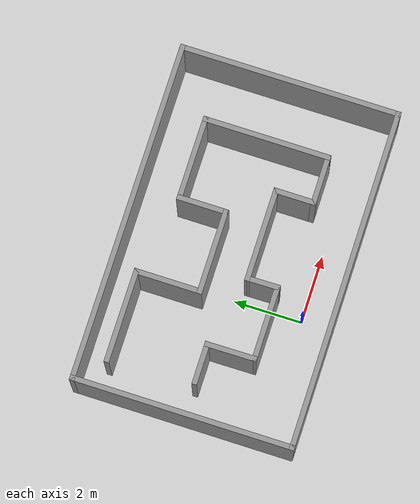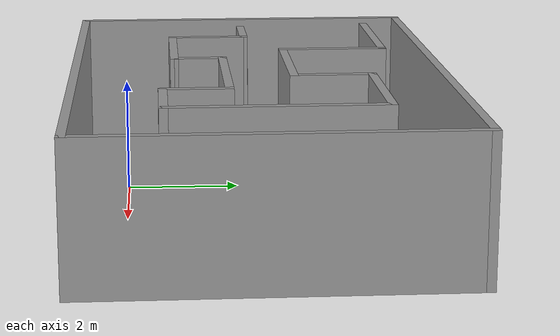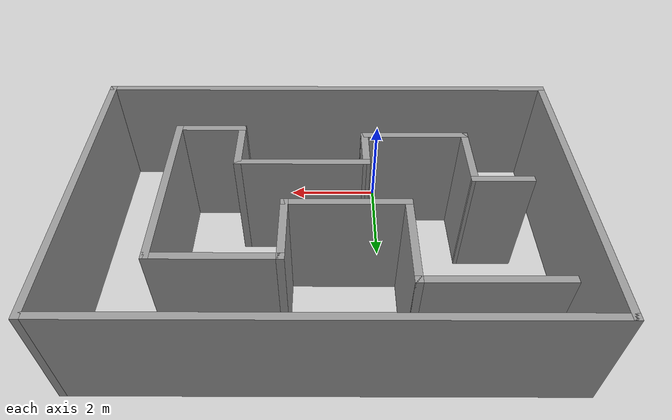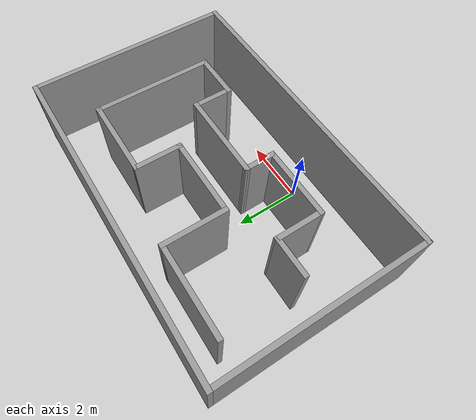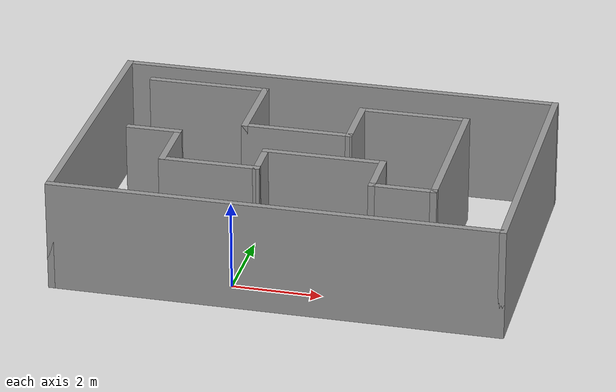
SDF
<?xml version='1.0'?>
<sdf version='1.7'>
  <model name='BigRoom'>
    <pose>1.145 2.305 0 0 -0 0</pose>
    <link name='Wall_0'>
      <collision name='Wall_0_Collision'>
        <geometry>
          <box>
            <size>10 0.15 2.5</size>
          </box>
        </geometry>
        <pose>0 0 1.25 0 -0 0</pose>
      </collision>
      <visual name='Wall_0_Visual'>
        <pose>0 0 1.25 0 -0 0</pose>
        <geometry>
          <box>
            <size>10 0.15 2.5</size>
          </box>
        </geometry>
        <material>
          <script>
            <uri>file://media/materials/scripts/gazebo.material</uri>
            <name>Gazebo/Grey</name>
          </script>
          <ambient>1 1 1 1</ambient>
        </material>
        <meta>
          <layer>0</layer>
        </meta>
      </visual>
      <pose>-0 -3.175 0 0 -0 0</pose>
    </link>
    <link name='Wall_1'>
      <collision name='Wall_1_Collision'>
        <geometry>
          <box>
            <size>6.5 0.15 2.5</size>
          </box>
        </geometry>
        <pose>0 0 1.25 0 -0 0</pose>
      </collision>
      <visual name='Wall_1_Visual'>
        <pose>0 0 1.25 0 -0 0</pose>
        <geometry>
          <box>
            <size>6.5 0.15 2.5</size>
          </box>
        </geometry>
        <material>
          <script>
            <uri>file://media/materials/scripts/gazebo.material</uri>
            <name>Gazebo/Grey</name>
          </script>
          <ambient>1 1 1 1</ambient>
        </material>
        <meta>
          <layer>0</layer>
        </meta>
      </visual>
      <pose>4.925 0 0 0 -0 1.5708</pose>
    </link>
    <link name='Wall_10'>
      <collision name='Wall_10_Collision'>
        <geometry>
          <box>
            <size>1.5 0.15 2.5</size>
          </box>
        </geometry>
        <pose>0 0 1.25 0 -0 0</pose>
      </collision>
      <visual name='Wall_10_Visual'>
        <pose>0 0 1.25 0 -0 0</pose>
        <geometry>
          <box>
            <size>1.5 0.15 2.5</size>
          </box>
        </geometry>
        <material>
          <script>
            <uri>file://media/materials/scripts/gazebo.material</uri>
            <name>Gazebo/Grey</name>
          </script>
          <ambient>1 1 1 1</ambient>
        </material>
        <meta>
          <layer>0</layer>
        </meta>
      </visual>
      <pose>0.796489 1.24726 0 0 -0 1.5708</pose>
    </link>
    <link name='Wall_11'>
      <collision name='Wall_11_Collision'>
        <geometry>
          <box>
            <size>2.5 0.15 2.5</size>
          </box>
        </geometry>
        <pose>0 0 1.25 0 -0 0</pose>
      </collision>
      <visual name='Wall_11_Visual'>
        <pose>0 0 1.25 0 -0 0</pose>
        <geometry>
          <box>
            <size>2.5 0.15 2.5</size>
          </box>
        </geometry>
        <material>
          <script>
            <uri>file://media/materials/scripts/gazebo.material</uri>
            <name>Gazebo/Grey</name>
          </script>
          <ambient>1 1 1 1</ambient>
        </material>
        <meta>
          <layer>0</layer>
        </meta>
      </visual>
      <pose>1.97149 1.92226 0 0 -0 0</pose>
    </link>
    <link name='Wall_12'>
      <collision name='Wall_12_Collision'>
        <geometry>
          <box>
            <size>3.75 0.15 2.5</size>
          </box>
        </geometry>
        <pose>0 0 1.25 0 -0 0</pose>
      </collision>
      <visual name='Wall_12_Visual'>
        <pose>0 0 1.25 0 -0 0</pose>
        <geometry>
          <box>
            <size>3.75 0.15 2.5</size>
          </box>
        </geometry>
        <material>
          <script>
            <uri>file://media/materials/scripts/gazebo.material</uri>
            <name>Gazebo/Grey</name>
          </script>
          <ambient>1 1 1 1</ambient>
        </material>
        <meta>
          <layer>0</layer>
        </meta>
      </visual>
      <pose>3.14649 0.122258 0 0 -0 -1.5708</pose>
    </link>
    <link name='Wall_13'>
      <collision name='Wall_13_Collision'>
        <geometry>
          <box>
            <size>1.5 0.15 2.5</size>
          </box>
        </geometry>
        <pose>0 0 1.25 0 -0 0</pose>
      </collision>
      <visual name='Wall_13_Visual'>
        <pose>0 0 1.25 0 -0 0</pose>
        <geometry>
          <box>
            <size>1.5 0.15 2.5</size>
          </box>
        </geometry>
        <material>
          <script>
            <uri>file://media/materials/scripts/gazebo.material</uri>
            <name>Gazebo/Grey</name>
          </script>
          <ambient>1 1 1 1</ambient>
        </material>
        <meta>
          <layer>0</layer>
        </meta>
      </visual>
      <pose>2.47149 -1.67774 0 0 -0 3.14159</pose>
    </link>
    <link name='Wall_14'>
      <collision name='Wall_14_Collision'>
        <geometry>
          <box>
            <size>1.25 0.15 2.5</size>
          </box>
        </geometry>
        <pose>0 0 1.25 0 -0 0</pose>
      </collision>
      <visual name='Wall_14_Visual'>
        <pose>0 0 1.25 0 -0 0</pose>
        <geometry>
          <box>
            <size>1.25 0.15 2.5</size>
          </box>
        </geometry>
        <material>
          <script>
            <uri>file://media/materials/scripts/gazebo.material</uri>
            <name>Gazebo/Grey</name>
          </script>
          <ambient>1 1 1 1</ambient>
        </material>
        <meta>
          <layer>0</layer>
        </meta>
      </visual>
      <pose>1.79649 -1.12774 0 0 -0 1.5708</pose>
    </link>
    <link name='Wall_15'>
      <collision name='Wall_15_Collision'>
        <geometry>
          <box>
            <size>2.75 0.15 2.5</size>
          </box>
        </geometry>
        <pose>0 0 1.25 0 -0 0</pose>
      </collision>
      <visual name='Wall_15_Visual'>
        <pose>0 0 1.25 0 -0 0</pose>
        <geometry>
          <box>
            <size>2.75 0.15 2.5</size>
          </box>
        </geometry>
        <material>
          <script>
            <uri>file://media/materials/scripts/gazebo.material</uri>
            <name>Gazebo/Grey</name>
          </script>
          <ambient>1 1 1 1</ambient>
        </material>
        <meta>
          <layer>0</layer>
        </meta>
      </visual>
      <pose>0.496489 -0.577742 0 0 -0 3.14159</pose>
    </link>
    <link name='Wall_16'>
      <collision name='Wall_16_Collision'>
        <geometry>
          <box>
            <size>1.01737 0.15 2.5</size>
          </box>
        </geometry>
        <pose>0 0 1.25 0 -0 0</pose>
      </collision>
      <visual name='Wall_16_Visual'>
        <pose>0 0 1.25 0 -0 0</pose>
        <geometry>
          <box>
            <size>1.01737 0.15 2.5</size>
          </box>
        </geometry>
        <material>
          <script>
            <uri>file://media/materials/scripts/gazebo.material</uri>
            <name>Gazebo/Grey</name>
          </script>
          <ambient>1 1 1 1</ambient>
        </material>
        <meta>
          <layer>0</layer>
        </meta>
      </visual>
      <pose>-0.798766 -1.0114 0 0 -0 -1.55985</pose>
    </link>
    <link name='Wall_17'>
      <collision name='Wall_17_Collision'>
        <geometry>
          <box>
            <size>2.25 0.15 2.5</size>
          </box>
        </geometry>
        <pose>0 0 1.25 0 -0 0</pose>
      </collision>
      <visual name='Wall_17_Visual'>
        <pose>0 0 1.25 0 -0 0</pose>
        <geometry>
          <box>
            <size>2.25 0.15 2.5</size>
          </box>
        </geometry>
        <material>
          <script>
            <uri>file://media/materials/scripts/gazebo.material</uri>
            <name>Gazebo/Grey</name>
          </script>
          <ambient>1 1 1 1</ambient>
        </material>
        <meta>
          <layer>0</layer>
        </meta>
      </visual>
      <pose>-1.84402 -1.44506 0 0 -0 3.14159</pose>
    </link>
    <link name='Wall_18'>
      <collision name='Wall_18_Collision'>
        <geometry>
          <box>
            <size>1.51164 0.15 2.5</size>
          </box>
        </geometry>
        <pose>0 0 1.25 0 -0 0</pose>
      </collision>
      <visual name='Wall_18_Visual'>
        <pose>0 0 1.25 0 -0 0</pose>
        <geometry>
          <box>
            <size>1.51164 0.15 2.5</size>
          </box>
        </geometry>
        <material>
          <script>
            <uri>file://media/materials/scripts/gazebo.material</uri>
            <name>Gazebo/Grey</name>
          </script>
          <ambient>1 1 1 1</ambient>
        </material>
        <meta>
          <layer>0</layer>
        </meta>
      </visual>
      <pose>-2.89877 -0.758545 0 0 -0 1.57777</pose>
    </link>
    <link name='Wall_19'>
      <collision name='Wall_19_Collision'>
        <geometry>
          <box>
            <size>1.25 0.15 2.5</size>
          </box>
        </geometry>
        <pose>0 0 1.25 0 -0 0</pose>
      </collision>
      <visual name='Wall_19_Visual'>
        <pose>0 0 1.25 0 -0 0</pose>
        <geometry>
          <box>
            <size>1.25 0.15 2.5</size>
          </box>
        </geometry>
        <material>
          <script>
            <uri>file://media/materials/scripts/gazebo.material</uri>
            <name>Gazebo/Grey</name>
          </script>
          <ambient>1 1 1 1</ambient>
        </material>
        <meta>
          <layer>0</layer>
        </meta>
      </visual>
      <pose>-3.45351 -0.077742 0 0 -0 3.14159</pose>
    </link>
    <link name='Wall_3'>
      <collision name='Wall_3_Collision'>
        <geometry>
          <box>
            <size>10 0.15 2.5</size>
          </box>
        </geometry>
        <pose>0 0 1.25 0 -0 0</pose>
      </collision>
      <visual name='Wall_3_Visual'>
        <pose>0 0 1.25 0 -0 0</pose>
        <geometry>
          <box>
            <size>10 0.15 2.5</size>
          </box>
        </geometry>
        <material>
          <script>
            <uri>file://media/materials/scripts/gazebo.material</uri>
            <name>Gazebo/Grey</name>
          </script>
          <ambient>1 1 1 1</ambient>
        </material>
        <meta>
          <layer>0</layer>
        </meta>
      </visual>
      <pose>-0 3.175 0 0 -0 3.14159</pose>
    </link>
    <link name='Wall_4'>
      <collision name='Wall_4_Collision'>
        <geometry>
          <box>
            <size>6.5 0.15 2.5</size>
          </box>
        </geometry>
        <pose>0 0 1.25 0 -0 0</pose>
      </collision>
      <visual name='Wall_4_Visual'>
        <pose>0 0 1.25 0 -0 0</pose>
        <geometry>
          <box>
            <size>6.5 0.15 2.5</size>
          </box>
        </geometry>
        <material>
          <script>
            <uri>file://media/materials/scripts/gazebo.material</uri>
            <name>Gazebo/Grey</name>
          </script>
          <ambient>1 1 1 1</ambient>
        </material>
        <meta>
          <layer>0</layer>
        </meta>
      </visual>
      <pose>-4.925 0 0 0 -0 -1.5708</pose>
    </link>
    <link name='Wall_7'>
      <collision name='Wall_7_Collision'>
        <geometry>
          <box>
            <size>2.75 0.15 2.5</size>
          </box>
        </geometry>
        <pose>0 0 1.25 0 -0 0</pose>
      </collision>
      <visual name='Wall_7_Visual'>
        <pose>0 0 1.25 0 -0 0</pose>
        <geometry>
          <box>
            <size>2.75 0.15 2.5</size>
          </box>
        </geometry>
        <material>
          <script>
            <uri>file://media/materials/scripts/gazebo.material</uri>
            <name>Gazebo/Grey</name>
          </script>
          <ambient>1 1 1 1</ambient>
        </material>
        <meta>
          <layer>0</layer>
        </meta>
      </visual>
      <pose>-2.85351 2.42226 0 0 -0 0</pose>
    </link>
    <link name='Wall_8'>
      <collision name='Wall_8_Collision'>
        <geometry>
          <box>
            <size>2 0.15 2.5</size>
          </box>
        </geometry>
        <pose>0 0 1.25 0 -0 0</pose>
      </collision>
      <visual name='Wall_8_Visual'>
        <pose>0 0 1.25 0 -0 0</pose>
        <geometry>
          <box>
            <size>2 0.15 2.5</size>
          </box>
        </geometry>
        <material>
          <script>
            <uri>file://media/materials/scripts/gazebo.material</uri>
            <name>Gazebo/Grey</name>
          </script>
          <ambient>1 1 1 1</ambient>
        </material>
        <meta>
          <layer>0</layer>
        </meta>
      </visual>
      <pose>-1.55351 1.49726 0 0 -0 -1.5708</pose>
    </link>
    <link name='Wall_9'>
      <collision name='Wall_9_Collision'>
        <geometry>
          <box>
            <size>2.5 0.15 2.5</size>
          </box>
        </geometry>
        <pose>0 0 1.25 0 -0 0</pose>
      </collision>
      <visual name='Wall_9_Visual'>
        <pose>0 0 1.25 0 -0 0</pose>
        <geometry>
          <box>
            <size>2.5 0.15 2.5</size>
          </box>
        </geometry>
        <material>
          <script>
            <uri>file://media/materials/scripts/gazebo.material</uri>
            <name>Gazebo/Grey</name>
          </script>
          <ambient>1 1 1 1</ambient>
        </material>
        <meta>
          <layer>0</layer>
        </meta>
      </visual>
      <pose>-0.378511 0.572258 0 0 -0 0</pose>
    </link>
    <static>1</static>
  </model>
</sdf>
